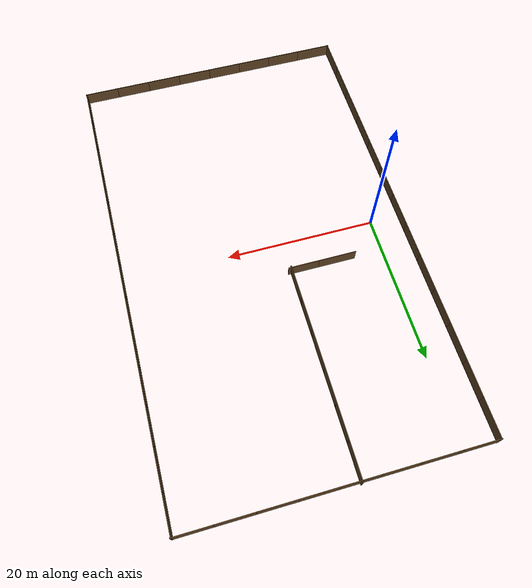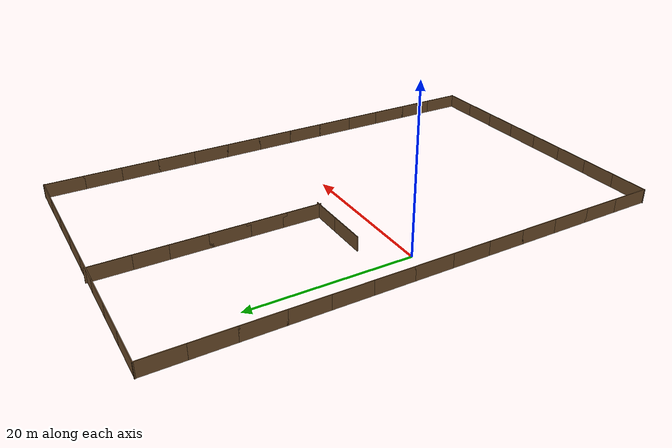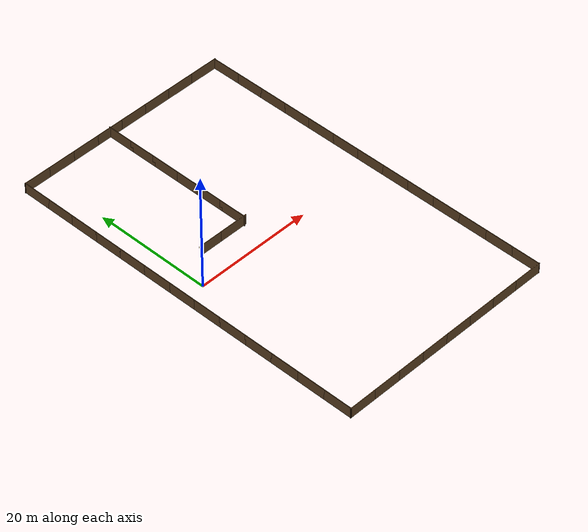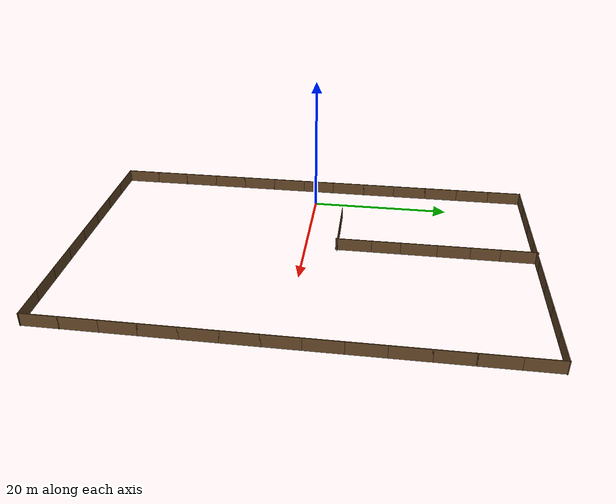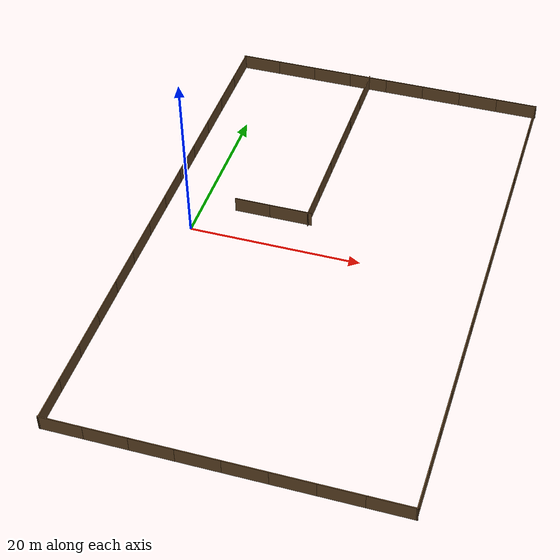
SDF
<sdf version="1.9">
 <world name="orchard_map_b">
  <physics name="fast" type="ode">
   <max_step_size>0.01</max_step_size>
   <real_time_factor>1.0</real_time_factor>
   <real_time_update_rate>100</real_time_update_rate>
  </physics>
  <plugin filename="ignition-gazebo-physics-system" name="ignition::gazebo::systems::Physics"/>
  <plugin filename="ignition-gazebo-user-commands-system" name="ignition::gazebo::systems::UserCommands"/>
  <plugin filename="ignition-gazebo-scene-broadcaster-system" name="ignition::gazebo::systems::SceneBroadcaster"/>
  <plugin filename="ignition-gazebo-sensors-system" name="ignition::gazebo::systems::Sensors">
   <render_engine>ogre2</render_engine>
  </plugin>
  <plugin filename="ignition-gazebo-imu-system" name="ignition::gazebo::systems::Imu"/>
  <plugin filename="ignition-gazebo-navsat-system" name="ignition::gazebo::systems::NavSat"/>
  <plugin filename="ignition-gazebo-contact-system" name="ignition::gazebo::systems::Contact"/>
  <spherical_coordinates>
   <surface_model>EARTH_WGS84</surface_model>
   <latitude_deg>37.3611</latitude_deg>
   <longitude_deg>-120.4322</longitude_deg>
   <elevation>0.0</elevation>
   <heading_deg>0</heading_deg>
  </spherical_coordinates>
  <gravity>0 0 -9.8</gravity>
  <light type="directional" name="sun">
   <cast_shadows>false</cast_shadows>
   <pose>0 0 20 0 0 0</pose>
   <diffuse>0.95 0.95 0.9 1</diffuse>
   <specular>0.3 0.3 0.3 1</specular>
   <direction>-0.3 0.1 -0.9</direction>
  </light>
  <light type="directional" name="fill">
   <cast_shadows>false</cast_shadows>
   <pose>0 0 10 0 0 0</pose>
   <diffuse>0.4 0.45 0.5 1</diffuse>
   <direction>0.5 -0.2 -0.5</direction>
  </light>
  <scene>
   <ambient>0.4 0.4 0.4 1</ambient>
   <background>0.7 0.75 0.85 1</background>
   <shadows>false</shadows>
  </scene>
  <include><uri>model://fence</uri><name>ofence_w_01</name><pose>-4.0000 -29.0769 0 0 0 0.0000</pose></include>
  <include><uri>model://fence</uri><name>ofence_w_02</name><pose>-4.0000 -24.2308 0 0 0 0.0000</pose></include>
  <include><uri>model://fence</uri><name>ofence_w_03</name><pose>-4.0000 -19.3846 0 0 0 0.0000</pose></include>
  <include><uri>model://fence</uri><name>ofence_w_04</name><pose>-4.0000 -14.5385 0 0 0 0.0000</pose></include>
  <include><uri>model://fence</uri><name>ofence_w_05</name><pose>-4.0000 -9.6923 0 0 0 0.0000</pose></include>
  <include><uri>model://fence</uri><name>ofence_w_06</name><pose>-4.0000 -4.8462 0 0 0 0.0000</pose></include>
  <include><uri>model://fence</uri><name>ofence_w_07</name><pose>-4.0000 -0.0000 0 0 0 0.0000</pose></include>
  <include><uri>model://fence</uri><name>ofence_w_08</name><pose>-4.0000 4.8462 0 0 0 0.0000</pose></include>
  <include><uri>model://fence</uri><name>ofence_w_09</name><pose>-4.0000 9.6923 0 0 0 0.0000</pose></include>
  <include><uri>model://fence</uri><name>ofence_w_10</name><pose>-4.0000 14.5385 0 0 0 0.0000</pose></include>
  <include><uri>model://fence</uri><name>ofence_w_11</name><pose>-4.0000 19.3846 0 0 0 0.0000</pose></include>
  <include><uri>model://fence</uri><name>ofence_w_12</name><pose>-4.0000 24.2308 0 0 0 0.0000</pose></include>
  <include><uri>model://fence</uri><name>ofence_w_13</name><pose>-4.0000 29.0769 0 0 0 0.0000</pose></include>
  <include><uri>model://fence</uri><name>ofence_e_14</name><pose>34.0000 -29.0769 0 0 0 0.0000</pose></include>
  <include><uri>model://fence</uri><name>ofence_e_15</name><pose>34.0000 -24.2308 0 0 0 0.0000</pose></include>
  <include><uri>model://fence</uri><name>ofence_e_16</name><pose>34.0000 -19.3846 0 0 0 0.0000</pose></include>
  <include><uri>model://fence</uri><name>ofence_e_17</name><pose>34.0000 -14.5385 0 0 0 0.0000</pose></include>
  <include><uri>model://fence</uri><name>ofence_e_18</name><pose>34.0000 -9.6923 0 0 0 0.0000</pose></include>
  <include><uri>model://fence</uri><name>ofence_e_19</name><pose>34.0000 -4.8462 0 0 0 0.0000</pose></include>
  <include><uri>model://fence</uri><name>ofence_e_20</name><pose>34.0000 -0.0000 0 0 0 0.0000</pose></include>
  <include><uri>model://fence</uri><name>ofence_e_21</name><pose>34.0000 4.8462 0 0 0 0.0000</pose></include>
  <include><uri>model://fence</uri><name>ofence_e_22</name><pose>34.0000 9.6923 0 0 0 0.0000</pose></include>
  <include><uri>model://fence</uri><name>ofence_e_23</name><pose>34.0000 14.5385 0 0 0 0.0000</pose></include>
  <include><uri>model://fence</uri><name>ofence_e_24</name><pose>34.0000 19.3846 0 0 0 0.0000</pose></include>
  <include><uri>model://fence</uri><name>ofence_e_25</name><pose>34.0000 24.2308 0 0 0 0.0000</pose></include>
  <include><uri>model://fence</uri><name>ofence_e_26</name><pose>34.0000 29.0769 0 0 0 0.0000</pose></include>
  <include><uri>model://fence</uri><name>ofence_s_27</name><pose>-1.6250 -31.5000 0 0 0 1.5708</pose></include>
  <include><uri>model://fence</uri><name>ofence_s_28</name><pose>3.1250 -31.5000 0 0 0 1.5708</pose></include>
  <include><uri>model://fence</uri><name>ofence_s_29</name><pose>7.8750 -31.5000 0 0 0 1.5708</pose></include>
  <include><uri>model://fence</uri><name>ofence_s_30</name><pose>12.6250 -31.5000 0 0 0 1.5708</pose></include>
  <include><uri>model://fence</uri><name>ofence_s_31</name><pose>17.3750 -31.5000 0 0 0 1.5708</pose></include>
  <include><uri>model://fence</uri><name>ofence_s_32</name><pose>22.1250 -31.5000 0 0 0 1.5708</pose></include>
  <include><uri>model://fence</uri><name>ofence_s_33</name><pose>26.8750 -31.5000 0 0 0 1.5708</pose></include>
  <include><uri>model://fence</uri><name>ofence_s_34</name><pose>31.6250 -31.5000 0 0 0 1.5708</pose></include>
  <include><uri>model://fence</uri><name>ofence_n_35</name><pose>-1.6250 31.5000 0 0 0 1.5708</pose></include>
  <include><uri>model://fence</uri><name>ofence_n_36</name><pose>3.1250 31.5000 0 0 0 1.5708</pose></include>
  <include><uri>model://fence</uri><name>ofence_n_37</name><pose>7.8750 31.5000 0 0 0 1.5708</pose></include>
  <include><uri>model://fence</uri><name>ofence_n_38</name><pose>12.6250 31.5000 0 0 0 1.5708</pose></include>
  <include><uri>model://fence</uri><name>ofence_n_39</name><pose>17.3750 31.5000 0 0 0 1.5708</pose></include>
  <include><uri>model://fence</uri><name>ofence_n_40</name><pose>22.1250 31.5000 0 0 0 1.5708</pose></include>
  <include><uri>model://fence</uri><name>ofence_n_41</name><pose>26.8750 31.5000 0 0 0 1.5708</pose></include>
  <include><uri>model://fence</uri><name>ofence_n_42</name><pose>31.6250 31.5000 0 0 0 1.5708</pose></include>
  <include><uri>model://fence</uri><name>ifence_v_01</name><pose>12.6300 6.7500 0 0 0 0.0000</pose></include>
  <include><uri>model://fence</uri><name>ifence_v_02</name><pose>12.6300 11.2500 0 0 0 0.0000</pose></include>
  <include><uri>model://fence</uri><name>ifence_v_03</name><pose>12.6300 15.7500 0 0 0 0.0000</pose></include>
  <include><uri>model://fence</uri><name>ifence_v_04</name><pose>12.6300 20.2500 0 0 0 0.0000</pose></include>
  <include><uri>model://fence</uri><name>ifence_v_05</name><pose>12.6300 24.7500 0 0 0 0.0000</pose></include>
  <include><uri>model://fence</uri><name>ifence_v_06</name><pose>12.6300 29.2500 0 0 0 0.0000</pose></include>
  <include><uri>model://fence</uri><name>ifence_h_08</name><pose>6.3938 4.5000 0 0 0 1.5708</pose></include>
  <include><uri>model://fence</uri><name>ifence_h_09</name><pose>10.5513 4.5000 0 0 0 1.5708</pose></include>
 </world>
</sdf>

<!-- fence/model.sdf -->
<sdf version="1.5">
  <model name="fence">
    <static>true</static>
    <link name="link">
      <pose>0 0 0.915 0 0 0</pose>
      <collision name="collision">
        <geometry>
          <box>
            <size>0.1 5. 1.83</size>
          </box>
        </geometry>
      </collision>
      <visual name="visual">
        <cast_shadows>false</cast_shadows>
        <geometry>
          <box>
            <size>0.1 5. 1.83</size>
          </box>
        </geometry>
        <material>
          <ambient>0.35 0.25 0.15 1</ambient>
          <diffuse>0.45 0.32 0.18 1</diffuse>
          <specular>0.1 0.1 0.1 1</specular>
          <pbr>
            <metal>
              <albedo_map>model://fence/materials/textures/woodboarding4.jpg</albedo_map>
              <metalness>0.0</metalness>
              <roughness>0.8</roughness>
            </metal>
          </pbr>
        </material>
      </visual>
    </link>
  </model>
</sdf>
